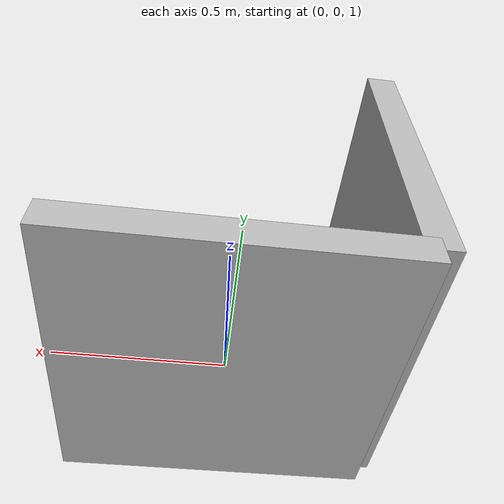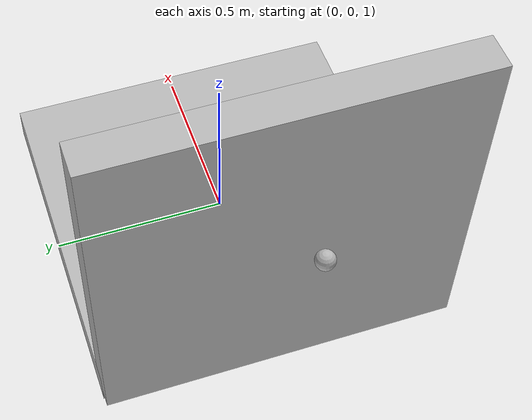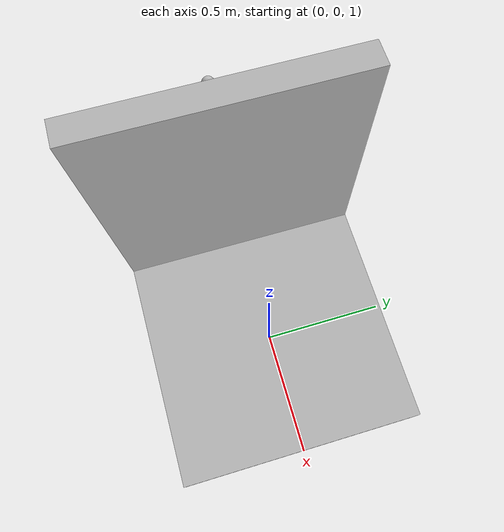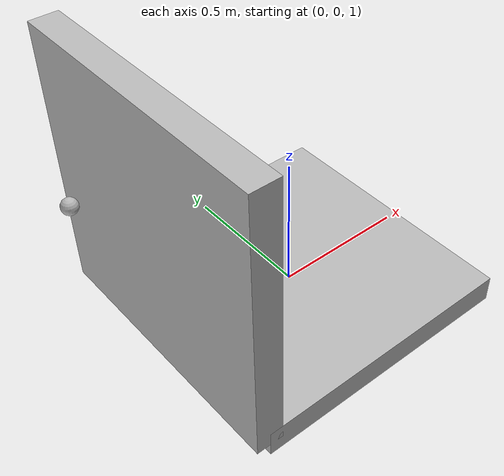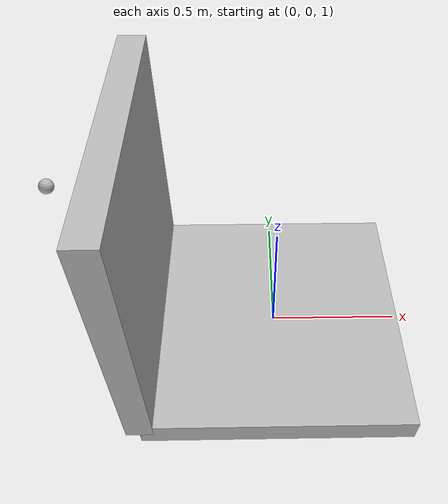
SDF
<?xml version="1.0" ?>
<sdf version="1.5">

  <model name="juggler">
    <pose>0 0 0 0 0 0</pose>

    <link name="ball">
      <self_collide>1</self_collide>
      <pose>-.75 0.0 1.75000 -0.000000 0.000000 0</pose>
      <inertial> <!-- box dim: w=1, h=.025, d=1 -->
        <pose>0 0 0 0.000000 -0.000000 0.000000</pose>
        <inertia>
          <ixx>.00000025</ixx>
          <ixy>0</ixy>
          <ixz>0</ixz>
          <iyy>0.0000025</iyy>
          <iyz>0</iyz>
          <izz>0.0000025</izz>
        </inertia>
        <mass>0.01</mass>
      </inertial>
      <collision name="ball-geom">
        <pose>0 -0.00000 0.000000 0.000000 0 -0.000000</pose>
        <geometry>
          <sphere>
            <radius>.025</radius>
          </sphere>
        </geometry>
        <surface>
          <friction>
            <ode>
              <mu>0.000000</mu>
              <mu2>0.00000</mu2>
              <fdir1>0.000000 0.000000 0.000000</fdir1>
              <slip1>0.000000</slip1>
              <slip2>0.000000</slip2>
            </ode>
          </friction>
          <bounce>
            <restitution_coefficient>0.80000000</restitution_coefficient>
            <threshold>0.00000</threshold>
          </bounce>
          <contact>
            <ode>
              <soft_cfm>0.000000</soft_cfm>
              <soft_erp>0.000000</soft_erp>
              <kp>1000000000000.000000</kp>
              <kd>1.000000</kd>
              <max_vel>0.000000</max_vel>
              <min_depth>0.001000</min_depth>
            </ode>
          </contact>
        </surface>
        <laser_retro>0.000000</laser_retro>
      </collision>
      <visual name="ball-visual">
        <pose>-0 -0.00000 0.000000 0.000000 0 -0.000000</pose>
        <geometry>
          <sphere>
            <radius>.025</radius>
          </sphere>
        </geometry>
        <cast_shadows>1</cast_shadows>
        <laser_retro>0.000000</laser_retro>
        <transparency>0.000000</transparency>
      </visual>
    </link>

    <link name="pan-link">
      <self_collide>1</self_collide>
      <pose>0 0 1.000000 -0.000000 0.000000 0</pose>
      <inertial> <!-- box dim: w=1, h=.025, d=1 -->
        <pose>0 0 0 0.000000 -0.000000 0.000000</pose>
        <inertia>
          <ixx>.16667</ixx>
          <ixy>0</ixy>
          <ixz>0</ixz>
          <iyy>0.1667</iyy>
          <iyz>0</iyz>
          <izz>0.16667</izz>
        </inertia>
        <mass>1.0</mass>
      </inertial>
      <collision name="semi-cone-geom1">
        <pose>-0.5 -0.00000 0.5000000 0.000000 1.5708 -0.000000</pose>
        <geometry>
          <box>
            <size>1 1 .1</size>
          </box>
        </geometry>
        <surface>
          <friction>
            <ode>
              <mu>0.000000</mu>
              <mu2>0.00000</mu2>
              <fdir1>0.000000 0.000000 0.000000</fdir1>
              <slip1>0.000000</slip1>
              <slip2>0.000000</slip2>
            </ode>
          </friction>
          <bounce>
            <restitution_coefficient>1.0000000</restitution_coefficient>
            <threshold>0.000000</threshold>
          </bounce>
          <contact>
            <ode>
              <soft_cfm>0.000000</soft_cfm>
              <soft_erp>0.000000</soft_erp>
              <kp>1000000000000.000000</kp>
              <kd>1.000000</kd>
              <max_vel>0.000000</max_vel>
              <min_depth>0.001000</min_depth>
            </ode>
          </contact>
        </surface>
        <laser_retro>0.000000</laser_retro>
      </collision>
      <collision name="semi-cone-geom2">
        <pose>0 -0 0.000000 0.000000 -0 -0.000000</pose>
        <geometry>
          <box>
            <size>1 1 .1</size>
          </box>
        </geometry>
        <surface>
          <friction>
            <ode>
              <mu>0.000000</mu>
              <mu2>0.00000</mu2>
              <fdir1>0.000000 0.000000 0.000000</fdir1>
              <slip1>0.000000</slip1>
              <slip2>0.000000</slip2>
            </ode>
          </friction>
          <bounce>
            <restitution_coefficient>1.000000</restitution_coefficient>
            <threshold>0.000000</threshold>
          </bounce>
          <contact>
            <ode>
              <soft_cfm>0.000000</soft_cfm>
              <soft_erp>0.000000</soft_erp>
              <kp>1000000000000.000000</kp>
              <kd>1.000000</kd>
              <max_vel>0.000000</max_vel>
              <min_depth>0.001000</min_depth>
            </ode>
          </contact>
        </surface>
        <laser_retro>0.000000</laser_retro>
      </collision>
      <visual name="semi-cone-visual1">
        <pose>-.5 -0.00000 0.5000000 0.000000 1.570800000 -0.000000</pose>
        <geometry>
          <box>
            <size>1 1 .1</size>
          </box>
        </geometry>
        <cast_shadows>1</cast_shadows>
        <laser_retro>0.000000</laser_retro>
        <transparency>0.000000</transparency>
      </visual>
      <visual name="semi-cone-visual2">
        <pose>0 .000000 0.00000 0.000000 0 -0.000000</pose>
        <geometry>
          <box>
            <size>1 1 .1</size>
          </box>
        </geometry>
        <cast_shadows>1</cast_shadows>
        <laser_retro>0.000000</laser_retro>
        <transparency>0.000000</transparency>
      </visual>
      <gravity>1</gravity>
      <self_collide>0</self_collide>
      <kinematic>0</kinematic>
    </link>
    <joint name="juggler-joint" type="revolute">
      <pose>-0.5000000 0.000000 0 0.000000 -0.000000 0.000000</pose>
      <parent>world</parent>
      <child>pan-link</child>
      <axis>
        <dynamics>
          <damping>0.000000</damping>
          <friction>0.000000</friction>
        </dynamics>
        <limit>
          <effort>10000.000000</effort>
          <velocity>1000.000000</velocity>
        </limit>
        <xyz>0.000000 1.000000 0.000000</xyz>
        <use_parent_model_frame>true</use_parent_model_frame>
      </axis>
    </joint>
    <plugin name="juggler-plugin" filename="ibjuggler.so" />

  </model>
</sdf>
